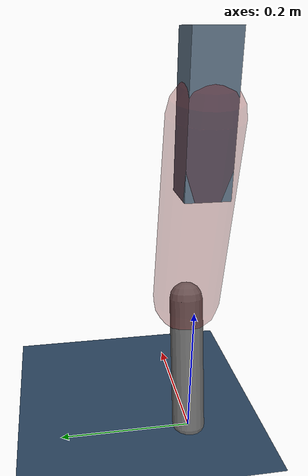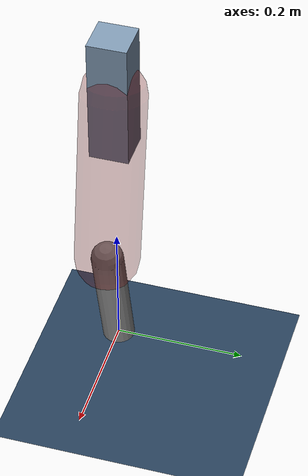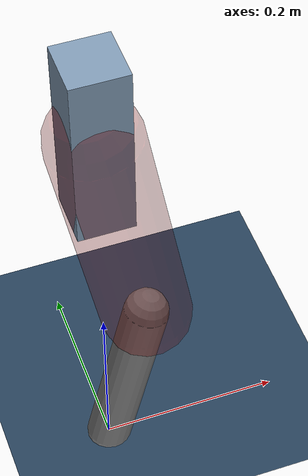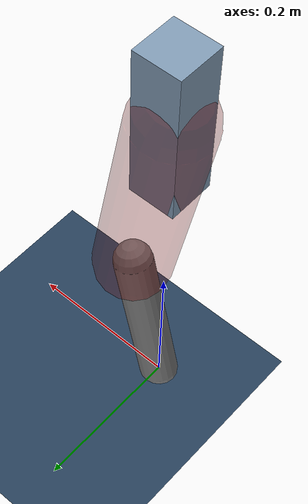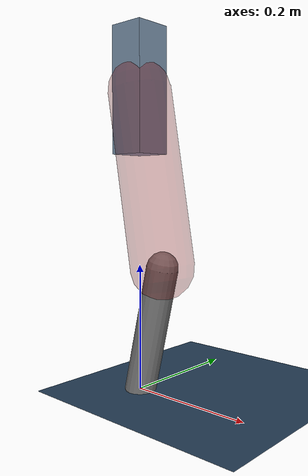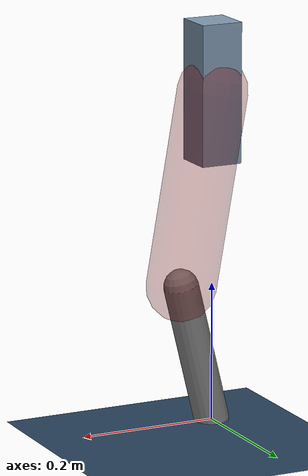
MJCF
<mujoco model="Hopper2D">
	<compiler inertiafromgeom="true" angle="radian" />
	<option timestep="0.001" integrator="implicit" cone="elliptic" solver="Newton" tolerance="1e-10" />

	<default>
		<geom contype="1" conaffinity="1" condim="3" friction="2 0.005 0.0001" solref="0.005 1" />
		<joint limited="true" damping="0.1" />
	</default>

	<asset>
		<texture name="skybox" type="skybox" builtin="gradient" rgb1=".4 .6 .8" rgb2="0 0 0" width="800" height="800" />
		<texture name="grid" type="2d" builtin="checker" rgb1=".1 .2 .3" rgb2=".2 .3 .4" width="300" height="300" mark="edge" markrgb=".2 .3 .4" />
		<material name="ground" texture="grid" texrepeat="1 1" texuniform="true" reflectance="0.1" />
		<material name="leg" rgba="0.5 0.6 0.7 1" />
	</asset>

	<worldbody>

		<geom name="floor" type="plane" size="5 5 0.25" material="ground" />

		<light directional="false" diffuse="0.8 0.8 0.8" specular="0.3 0.3 0.3" pos="0 0 2" dir="0 0 -1" />
		<light mode="targetbodycom" target="base" directional="false" diffuse="0.8 0.8 0.8" specular="0.3 0.3 0.3" pos="0 0 2" dir="0 0 -1" />

		<camera name="fixed" pos="0 -2 1" xyaxes="1 0 0 0 0 1" />
		<camera name="tracking" mode="trackcom" pos="0 -3 1" />

		<body name="root" pos="0 0 0.4764411669419787">
			<joint name="slide_x" type="slide" axis="1 0 0" range="-100 100" />
			<joint name="slide_z" type="slide" axis="0 0 1" range="0 10" />

			<body name="base" pos="0 0 0">
				<geom name="torso" type="box" size="0.03 0.03 0.1" mass="3.701" material="leg" />

				<body name="link1" pos="0 0 0" euler="0 1.3967892083052609 0">
					<joint type="hinge" axis="0 -1 0" pos="0 0 0" name="hinge1" limited="true" range="-3.14 3.14" stiffness="0" damping="0.1" />
					<geom name="thigh" type="capsule" fromto="0 0 0 0.2799927093998359 0 0" size="0.05" rgba="0.5 0 0 0.3" mass="0.9350810444395733" />

					<body name="link2" pos="0.2799927093998359 0 0" euler="0 0.41102557923680394 0">
						<joint type="hinge" axis="0 -1 0" pos="0 0 0" name="hinge2" limited="true" range="-3.14 3.14" stiffness="0" damping="0.1" />
						<geom name="shank" type="capsule" fromto="0 0 0 0.20644845754214278 0 0" size="0.025" mass="0.4063036117879285" />

					</body>
				</body>
			</body>
		</body>
	</worldbody>

	<actuator>
		<motor name="torque1" joint="hinge1" ctrlrange="-81.26065291773023 81.26065291773023" ctrllimited="true" gear="1" />
		<motor name="torque2" joint="hinge2" ctrlrange="-146.51887058844287 146.51887058844287" ctrllimited="true" gear="1" />
	</actuator>
</mujoco>
